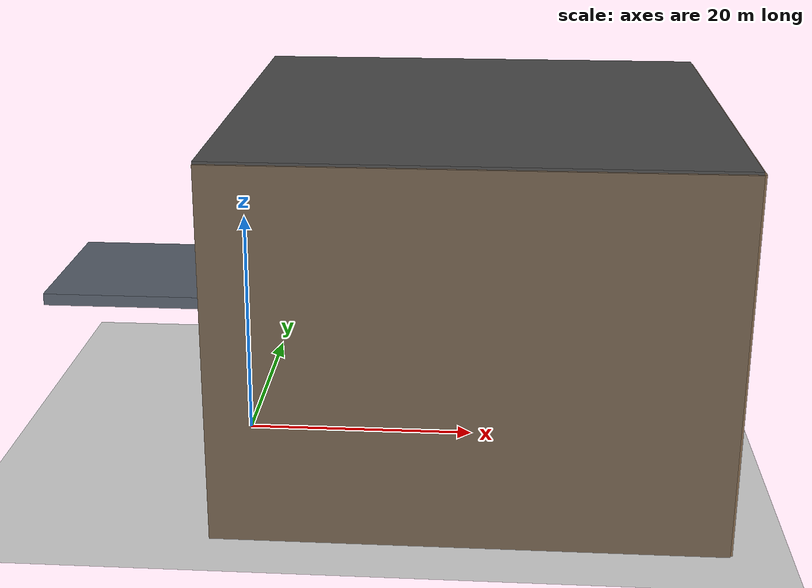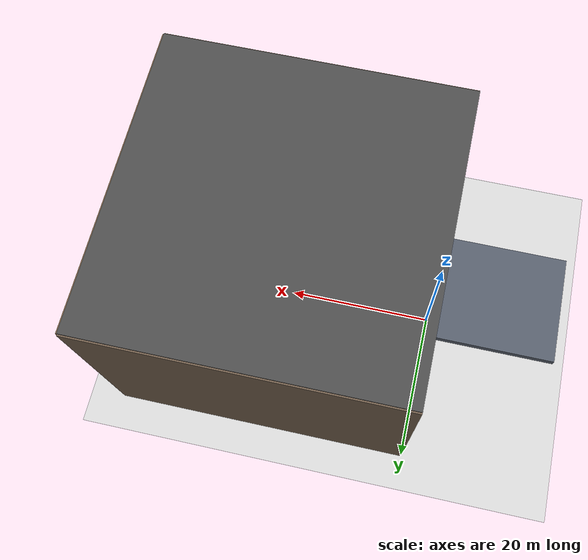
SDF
<?xml version="1.0"?>
<sdf version="1.6">
  <world name="goaf_40x40x30_platform">
    <include><uri>model://sun</uri></include>
    <include><uri>model://ground_plane</uri></include>

    <scene>
      <ambient>0.35 0.35 0.35 1</ambient>
      <background>0.06 0.07 0.08 1</background>
      <shadows>true</shadows>
    </scene>

    <gui fullscreen="0">
      <camera name="overview">
        <pose>-22 -42 39 0 0.48 0.82</pose>
        <view_controller>orbit</view_controller>
      </camera>
    </gui>

    <!-- The platform top is at the chamber's middle height, z=15 m. Its
         front edge meets the open entrance plane x=0. -->
    <model name="entrance_platform">
      <static>true</static>
      <pose>-8 0 14.5 0 0 0</pose>
      <link name="link">
        <collision name="collision">
          <geometry><box><size>16 14 1</size></box></geometry>
        </collision>
        <visual name="visual">
          <geometry><box><size>16 14 1</size></box></geometry>
          <material>
            <ambient>0.22 0.24 0.28 1</ambient>
            <diffuse>0.32 0.35 0.40 1</diffuse>
          </material>
        </visual>
      </link>
    </model>

    <!-- Open entrance at x=0. Clear internal dimensions are 40 m deep (x),
         40 m wide (y), and 30 m high (z). There are no internal obstacles. -->
    <model name="left_wall">
      <static>true</static>
      <pose>20 20 15 0 0 0</pose>
      <link name="link">
        <collision name="collision">
          <geometry><box><size>40 0.4 30</size></box></geometry>
        </collision>
        <visual name="visual">
          <geometry><box><size>40 0.4 30</size></box></geometry>
          <material>
            <ambient>0.30 0.25 0.20 1</ambient>
            <diffuse>0.42 0.35 0.28 1</diffuse>
          </material>
        </visual>
      </link>
    </model>

    <model name="right_wall">
      <static>true</static>
      <pose>20 -20 15 0 0 0</pose>
      <link name="link">
        <collision name="collision">
          <geometry><box><size>40 0.4 30</size></box></geometry>
        </collision>
        <visual name="visual">
          <geometry><box><size>40 0.4 30</size></box></geometry>
          <material>
            <ambient>0.30 0.25 0.20 1</ambient>
            <diffuse>0.42 0.35 0.28 1</diffuse>
          </material>
        </visual>
      </link>
    </model>

    <model name="far_wall">
      <static>true</static>
      <pose>40 0 15 0 0 0</pose>
      <link name="link">
        <collision name="collision">
          <geometry><box><size>0.4 40 30</size></box></geometry>
        </collision>
        <visual name="visual">
          <geometry><box><size>0.4 40 30</size></box></geometry>
          <material>
            <ambient>0.34 0.27 0.20 1</ambient>
            <diffuse>0.48 0.38 0.28 1</diffuse>
          </material>
        </visual>
      </link>
    </model>

    <model name="ceiling">
      <static>true</static>
      <pose>20 0 30 0 0 0</pose>
      <link name="link">
        <collision name="collision">
          <geometry><box><size>40 40 0.4</size></box></geometry>
        </collision>
        <visual name="visual">
          <geometry><box><size>40 40 0.4</size></box></geometry>
          <material>
            <ambient>0.20 0.20 0.20 1</ambient>
            <diffuse>0.28 0.28 0.28 1</diffuse>
          </material>
        </visual>
      </link>
    </model>

    <model name="chamber_floor">
      <static>true</static>
      <pose>20 0 0.1 0 0 0</pose>
      <link name="link">
        <collision name="collision">
          <geometry><box><size>40 40 0.2</size></box></geometry>
        </collision>
        <visual name="visual">
          <geometry><box><size>40 40 0.2</size></box></geometry>
          <material>
            <ambient>0.18 0.16 0.14 1</ambient>
            <diffuse>0.26 0.23 0.20 1</diffuse>
          </material>
        </visual>
      </link>
    </model>
  </world>
</sdf>
